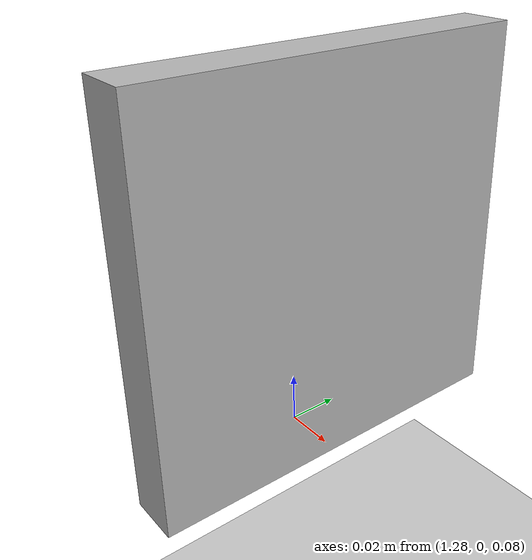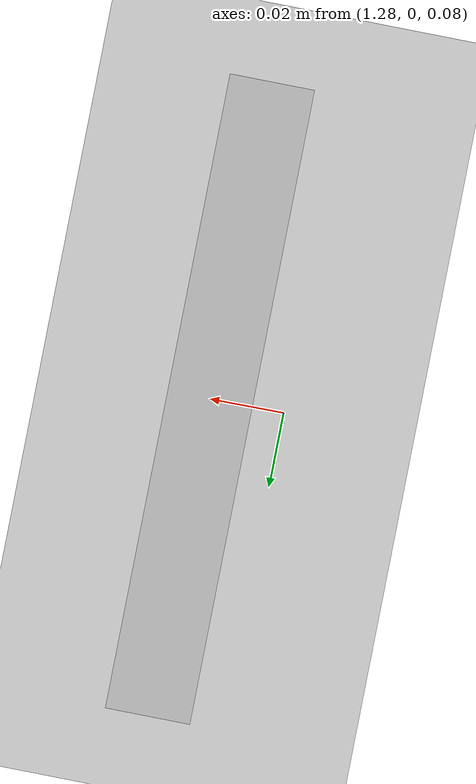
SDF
<?xml version="1.0"?>
<sdf version="1.6">
  <world name="default">

    <include><uri>model://ground_plane</uri></include>
    <include><uri>model://sun</uri></include>

    <!-- 1.3m ahead, marker center at the camera optical-axis height (z≈0.16). -->
    <include>
      <name>aruco_1</name>
      <uri>model://aruco_marker</uri>
      <pose>1.3 0 0.16 0 0 0</pose>
    </include>

  </world>
</sdf>

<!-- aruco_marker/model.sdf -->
<!-- ArUco id=1 texture on a thin panel. The marker is visible on the -X face the camera sees.
     Marker real size 0.15m (matches aruco_detector.MARKER_SIZE_M -> distance estimation is correct). -->
<sdf version="1.6">
  <model name="aruco_marker">
    <static>true</static>
    <link name="link">
      <visual name="marker">
        <geometry>
          <box><size>0.02 0.15 0.15</size></box>
        </geometry>
        <material>
          <script>
            <uri>model://aruco_marker/materials/scripts</uri>
            <uri>model://aruco_marker/materials/textures</uri>
            <name>ArucoMarker/Marker1</name>
          </script>
        </material>
      </visual>
      <collision name="c">
        <geometry>
          <box><size>0.02 0.15 0.15</size></box>
        </geometry>
      </collision>
    </link>
  </model>
</sdf>
